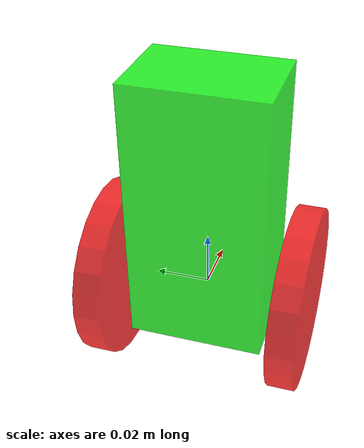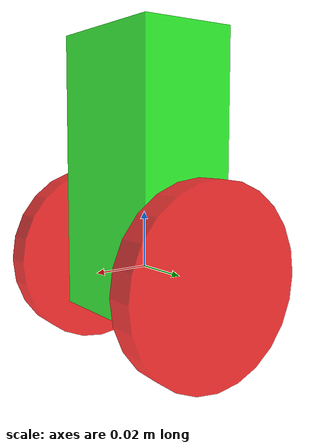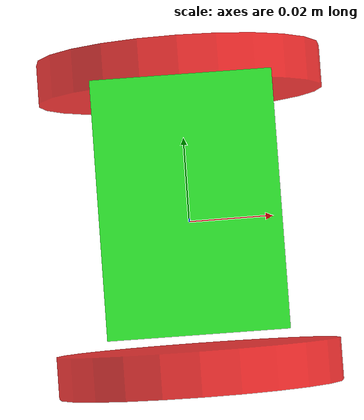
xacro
<?xml version="1.0"?>
<robot xmlns:xacro="http://www.ros.org/wiki/xacro" name="edumip_robot">
  <xacro:property name="wheel_separation" value="0.070" />
  <xacro:property name="wheel_radius" value="0.034" />
  <xacro:property name="wheel_width" value="0.010" />
  <xacro:property name="body_height" value="0.1" />
  <xacro:property name="body_width" value="0.050" />
  <xacro:property name="body_length" value="0.035" />
  <xacro:property name="edumip_name" value="edumip_body"/>

  <link name="${edumip_name}">
    <visual>
      <origin xyz="0 0 ${wheel_radius}"/>
      <geometry>
        <box size="${body_length} ${body_width} ${body_height}"/>
      </geometry>
      <material name="body_color">
        <color rgba="0 1 0 .8"/>
      </material>
    </visual>

    <collision>
      <origin xyz="0 0 ${wheel_radius}"/>
      <geometry>
        <box size="${body_length} ${body_width} ${body_height}"/>
      </geometry>
    </collision>

    <inertial>
      <origin xyz = "0 0 -${wheel_radius}"/>
      <mass value="10"/>
      <inertia ixx="1e-3" ixy="0.0" ixz="0.0" iyy="1e-3" iyz="0.0" izz="1e-3"/>
    </inertial>
  </link>

  <link name="wheelL">
    <visual>
     <origin rpy="1.57 0 0"/>
      <geometry>
        <cylinder length="${wheel_width}" radius="${wheel_radius}"/>
      </geometry>
      <material name="wheel_color">
        <color rgba="1 0 0 .8"/>
      </material>
    </visual>

    <collision>
      <origin rpy="1.57 0 0"/>
      <geometry>
        <cylinder length="${wheel_width}" radius="${wheel_radius}"/>
      </geometry>
    </collision>

    <inertial>
      <origin rpy="1.57 0 0"/>
      <mass value="10"/>
      <inertia ixx="${0.0833*10*(3*wheel_radius*wheel_radius+ wheel_width*wheel_width)}" ixy="0.0" ixz="0.0" iyy="${0.0833*10*(3*wheel_radius*wheel_radius + wheel_width*wheel_width)}" iyz="0.0" izz="${0.5*10*wheel_radius*wheel_radius}"/>
    </inertial>
  </link>

  <link name="wheelR">
    <visual>
     <origin rpy="1.57 0 0"/>
      <geometry>
        <cylinder length="${wheel_width}" radius="${wheel_radius}"/>
      </geometry>
      <material name="wheel_color">
        <color rgba="1 0 0 .8"/>
      </material>
    </visual>

    <collision>
      <origin rpy="1.57 0 0"/>
      <geometry>
        <cylinder length="${wheel_width}" radius="${wheel_radius}"/>
      </geometry>
    </collision>

    <inertial>
      <origin rpy="1.57 0 0"/>
      <mass value="10"/>
      <inertia ixx="${0.0833*10*(3*wheel_radius*wheel_radius+ wheel_width*wheel_width)}" ixy="0.0" ixz="0.0" iyy="${0.0833*10*(3*wheel_radius*wheel_radius + wheel_width*wheel_width)}" iyz="0.0" izz="${0.5*10*wheel_radius*wheel_radius}"/>
    </inertial>
  </link>

  <joint name="jointL" type="continuous">
    <origin xyz="0 0.035 0" rpy="0 0 0"/>
    <axis xyz="0 1 0"/>
    <parent link="${edumip_name}"/>
    <child link="wheelL"/>
  </joint>

  <joint name="jointR" type="continuous">
    <origin xyz="0 -0.035 0" rpy="0 0 0"/>
    <axis xyz="0 1 0"/>
    <parent link="${edumip_name}"/>
    <child link="wheelR"/>
  </joint>

</robot>
